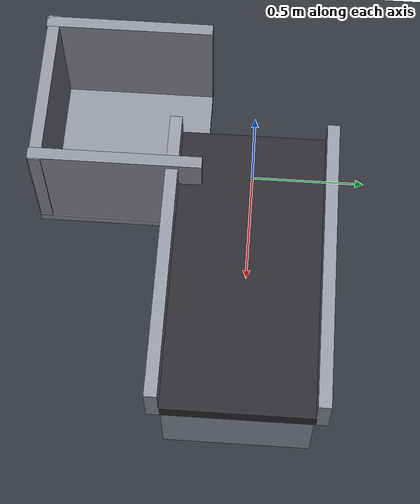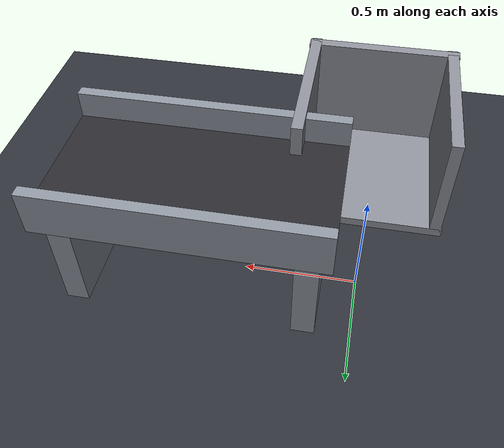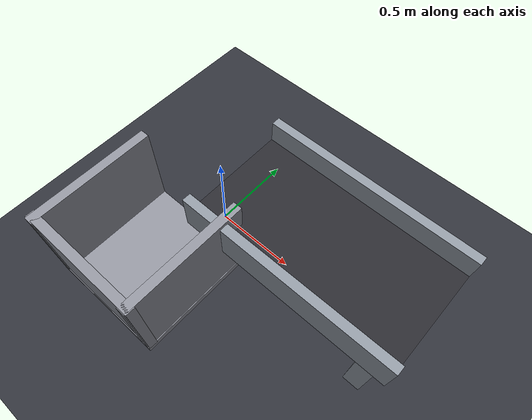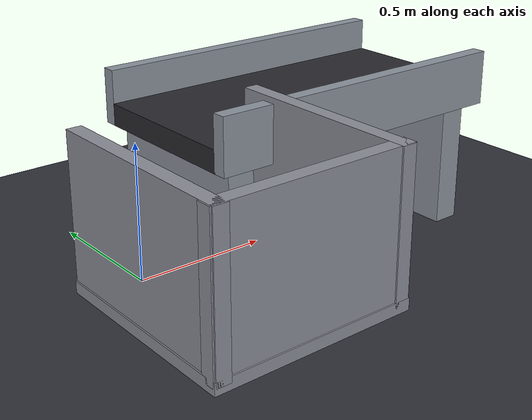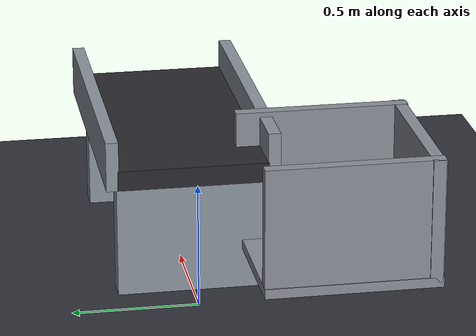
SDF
<?xml version="1.0" ?>
<sdf version="1.10">
  <world name="pickplace_world">

    <physics name="2ms" type="ignored">
      <max_step_size>0.002</max_step_size>
      <real_time_factor>1.0</real_time_factor>
    </physics>
    <plugin filename="gz-sim-physics-system" name="gz::sim::systems::Physics"/>
    <plugin filename="gz-sim-user-commands-system" name="gz::sim::systems::UserCommands"/>
    <plugin filename="gz-sim-scene-broadcaster-system" name="gz::sim::systems::SceneBroadcaster"/>
    <plugin filename="gz-sim-sensors-system" name="gz::sim::systems::Sensors">
      <render_engine>ogre2</render_engine>
    </plugin>
    <plugin filename="gz-sim-contact-system" name="gz::sim::systems::Contact"/>

    <gui fullscreen="false">
      <plugin filename="MinimalScene" name="3D View">
        <gz-gui>
          <title>3D View</title>
        </gz-gui>
        <engine>ogre2</engine>
        <scene>scene</scene>
        <ambient_light>0.35 0.35 0.4</ambient_light>
        <background_color>0.05 0.06 0.09</background_color>
        <camera_pose>2.2 -1.8 1.6 0 0.32 2.30</camera_pose>
      </plugin>
      <plugin filename="GzSceneManager" name="Scene Manager"/>
      <plugin filename="InteractiveViewControl" name="Interactive view control"/>
    </gui>

    <scene>
      <ambient>0.32 0.33 0.38 1.0</ambient>
      <background>0.05 0.06 0.10 1.0</background>
      <shadows>true</shadows>
      <grid>false</grid>
      <sky/>
    </scene>

    <light type="directional" name="sun">
      <cast_shadows>true</cast_shadows>
      <pose>2 -2 6 0 0.7 0.6</pose>
      <diffuse>1.0 0.97 0.92 1</diffuse>
      <specular>0.5 0.5 0.5 1</specular>
      <attenuation>
        <range>50</range>
        <constant>0.9</constant>
        <linear>0.005</linear>
        <quadratic>0.0001</quadratic>
      </attenuation>
      <direction>-0.4 0.3 -1.0</direction>
    </light>
    <light type="point" name="fill_left">
      <pose>-1.5 1.5 2 0 0 0</pose>
      <diffuse>0.40 0.50 0.70 1</diffuse>
      <specular>0.1 0.1 0.2 1</specular>
      <attenuation>
        <range>12</range>
        <constant>0.4</constant>
        <linear>0.05</linear>
        <quadratic>0.001</quadratic>
      </attenuation>
    </light>
    <light type="spot" name="arm_key">
      <pose>1.0 0 3.0 0 1.4 0</pose>
      <diffuse>0.9 0.92 1.0 1</diffuse>
      <specular>0.3 0.3 0.3 1</specular>
      <attenuation>
        <range>8</range>
        <constant>0.5</constant>
        <linear>0.05</linear>
        <quadratic>0.001</quadratic>
      </attenuation>
      <direction>0 0 -1</direction>
      <spot>
        <inner_angle>0.6</inner_angle>
        <outer_angle>1.1</outer_angle>
        <falloff>1.0</falloff>
      </spot>
    </light>

    <!-- Floor -->
    <model name="floor">
      <static>true</static>
      <link name="floor_link">
        <collision name="col">
          <geometry><plane><normal>0 0 1</normal><size>20 20</size></plane></geometry>
          <surface><friction><ode><mu>0.7</mu><mu2>0.7</mu2></ode></friction></surface>
        </collision>
        <visual name="vis">
          <geometry><plane><normal>0 0 1</normal><size>20 20</size></plane></geometry>
          <material>
            <ambient>0.10 0.11 0.13 1</ambient>
            <diffuse>0.18 0.19 0.22 1</diffuse>
            <specular>0.05 0.05 0.05 1</specular>
          </material>
        </visual>
      </link>
    </model>

    <!-- Short BHS feed conveyor -->
    <model name="bhs_conveyor">
      <static>true</static>
      <pose>0.7 0 0.50 0 0 0</pose>
      <link name="belt">
        <collision name="belt_col">
          <geometry><box><size>1.2 0.6 0.08</size></box></geometry>
          <surface>
            <friction>
              <ode>
                <mu>0.6</mu>
                <mu2>0.6</mu2>
              </ode>
            </friction>
          </surface>
        </collision>
        <visual name="belt_vis">
          <geometry><box><size>1.2 0.6 0.08</size></box></geometry>
          <material>
            <ambient>0.08 0.08 0.10 1</ambient>
            <diffuse>0.16 0.16 0.18 1</diffuse>
            <specular>0.4 0.4 0.4 1</specular>
          </material>
        </visual>
      </link>
      <link name="rail_l">
        <pose>0 0.32 0.06 0 0 0</pose>
        <visual name="vis"><geometry><box><size>1.2 0.05 0.20</size></box></geometry>
          <material><ambient>0.30 0.30 0.35 1</ambient><diffuse>0.55 0.58 0.62 1</diffuse></material></visual>
        <collision name="col"><geometry><box><size>1.2 0.05 0.20</size></box></geometry></collision>
      </link>
      <link name="rail_r">
        <pose>0 -0.32 0.06 0 0 0</pose>
        <visual name="vis"><geometry><box><size>1.2 0.05 0.20</size></box></geometry>
          <material><ambient>0.30 0.30 0.35 1</ambient><diffuse>0.55 0.58 0.62 1</diffuse></material></visual>
        <collision name="col"><geometry><box><size>1.2 0.05 0.20</size></box></geometry></collision>
      </link>
      <link name="leg_a">
        <pose>-0.5 0 -0.27 0 0 0</pose>
        <visual name="vis"><geometry><box><size>0.10 0.6 0.50</size></box></geometry>
          <material><ambient>0.30 0.30 0.35 1</ambient><diffuse>0.55 0.58 0.62 1</diffuse></material></visual>
      </link>
      <link name="leg_b">
        <pose>0.5 0 -0.27 0 0 0</pose>
        <visual name="vis"><geometry><box><size>0.10 0.6 0.50</size></box></geometry>
          <material><ambient>0.30 0.30 0.35 1</ambient><diffuse>0.55 0.58 0.62 1</diffuse></material></visual>
      </link>
    </model>

    <!-- ULD bin (placement target), close to arm for Piper reach -->
    <model name="uld_ld3">
      <static>true</static>
      <pose>0 -0.55 0.18 0 0 0</pose>
      <link name="base">
        <visual name="vis"><geometry><box><size>0.7 0.7 0.04</size></box></geometry>
          <material><ambient>0.30 0.30 0.32 1</ambient><diffuse>0.55 0.56 0.60 1</diffuse><specular>0.5 0.5 0.5 1</specular></material></visual>
        <collision name="col"><geometry><box><size>0.7 0.7 0.04</size></box></geometry></collision>
      </link>
      <link name="wall_back">
        <pose>-0.32 0 0.25 0 0 0</pose>
        <visual name="vis"><geometry><box><size>0.05 0.7 0.50</size></box></geometry>
          <material><ambient>0.30 0.30 0.32 1</ambient><diffuse>0.55 0.56 0.60 1</diffuse></material></visual>
        <collision name="col"><geometry><box><size>0.05 0.7 0.50</size></box></geometry></collision>
      </link>
      <link name="wall_front">
        <pose>0.32 0 0.25 0 0 0</pose>
        <visual name="vis"><geometry><box><size>0.05 0.7 0.50</size></box></geometry>
          <material><ambient>0.30 0.30 0.32 1</ambient><diffuse>0.55 0.56 0.60 1</diffuse></material></visual>
        <collision name="col"><geometry><box><size>0.05 0.7 0.50</size></box></geometry></collision>
      </link>
      <link name="wall_l">
        <pose>0 -0.32 0.25 0 0 0</pose>
        <visual name="vis"><geometry><box><size>0.7 0.05 0.50</size></box></geometry>
          <material><ambient>0.30 0.30 0.32 1</ambient><diffuse>0.55 0.56 0.60 1</diffuse></material></visual>
        <collision name="col"><geometry><box><size>0.7 0.05 0.50</size></box></geometry></collision>
      </link>
    </model>

    <!-- Cinematic camera (high 3/4 view showing arm, conveyor, ULD all in frame) -->
    <model name="cinematic_cam">
      <static>true</static>
      <pose>2.3 -1.8 1.9 0 0.45 2.40</pose>
      <link name="cam_link">
        <sensor name="cinematic" type="camera">
          <update_rate>30</update_rate>
          <camera>
            <horizontal_fov>1.20</horizontal_fov>
            <image><width>1920</width><height>1080</height><format>R8G8B8</format></image>
            <clip><near>0.05</near><far>100</far></clip>
          </camera>
          <topic>cinematic</topic>
          <always_on>true</always_on>
          <plugin filename="gz-sim-camera-video-recorder-system"
                  name="gz::sim::systems::CameraVideoRecorder">
            <service>cinematic/record_video</service>
            <use_sim_time>true</use_sim_time>
          </plugin>
        </sensor>
      </link>
    </model>

  </world>
</sdf>
